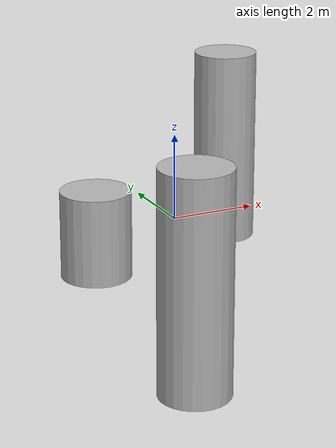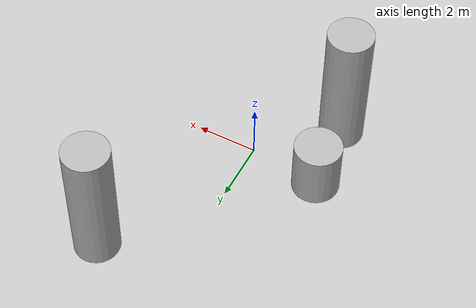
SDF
<?xml version='1.0'?>
<sdf version='1.6'>
  <model name='utrap1'>

    <model name='beer'>
      <link name='link'>
        <pose frame=''>0 0 0.115 0 -0 0</pose>
        <inertial>
          <mass>1</mass>
          <inertia>
            <ixx>0</ixx>
            <ixy>0</ixy>
            <ixz>0</ixz>
            <iyy>0</iyy>
            <iyz>0</iyz>
            <izz>0</izz>
          </inertia>
        </inertial>
        <collision name='collision'>
          <geometry>
            <cylinder>
              <radius>0.8</radius>
              <length>5</length>
            </cylinder>
          </geometry>
        </collision>
        <visual name='visual'>
          <geometry>
            <cylinder>
              <radius>0.8</radius>
              <length>2</length>
            </cylinder>
          </geometry>
          <material>
            <script>
              <uri>model://beer/materials/scripts</uri>
              <uri>model://beer/materials/textures</uri>
              <name>Beer/Diffuse</name>
            </script>
          </material>
        </visual>
      </link>
      <pose frame=''>-2.12272 -0.361417 0 0 -0 0</pose>
    </model>

    <model name='beer_0'>
      <link name='link'>
        <pose frame=''>0 0 0.115 0 -0 0</pose>
        <inertial>
          <mass>1</mass>
          <inertia>
            <ixx>0</ixx>
            <ixy>0</ixy>
            <ixz>0</ixz>
            <iyy>0</iyy>
            <iyz>0</iyz>
            <izz>0</izz>
          </inertia>
        </inertial>
        <collision name='collision'>
          <geometry>
            <cylinder>
              <radius>0.8</radius>
              <length>5</length>
            </cylinder>
          </geometry>
        </collision>
        <visual name='visual'>
          <geometry>
            <cylinder>
              <radius>0.8</radius>
              <length>5</length>
            </cylinder>
          </geometry>
          <material>
            <script>
              <uri>model://beer/materials/scripts</uri>
              <uri>model://beer/materials/textures</uri>
              <name>Beer/Diffuse</name>
            </script>
          </material>
        </visual>
      </link>
      <pose frame=''>-1.47687 -3.94663 0 0 -0 0</pose>
    </model>

    <model name='beer_1'>
      <link name='link'>
        <pose frame=''>0 0 0.115 0 -0 0</pose>
        <inertial>
          <mass>1</mass>
          <inertia>
            <ixx>0</ixx>
            <ixy>0</ixy>
            <ixz>0</ixz>
            <iyy>0</iyy>
            <iyz>0</iyz>
            <izz>0</izz>
          </inertia>
        </inertial>
        <collision name='collision'>
          <geometry>
            <cylinder>
              <radius>0.8</radius>
              <length>5</length>
            </cylinder>
          </geometry>
        </collision>
        <visual name='visual'>
          <geometry>
            <cylinder>
              <radius>0.8</radius>
              <length>5</length>
            </cylinder>
          </geometry>
          <material>
            <script>
              <uri>model://beer/materials/scripts</uri>
              <uri>model://beer/materials/textures</uri>
              <name>Beer/Diffuse</name>
            </script>
          </material>
        </visual>
      </link>
      <pose frame=''>3.59959 4.30805 0 0 -0 0</pose>
    </model>
    <static>0</static>
    <allow_auto_disable>1</allow_auto_disable>
  </model>
</sdf>
